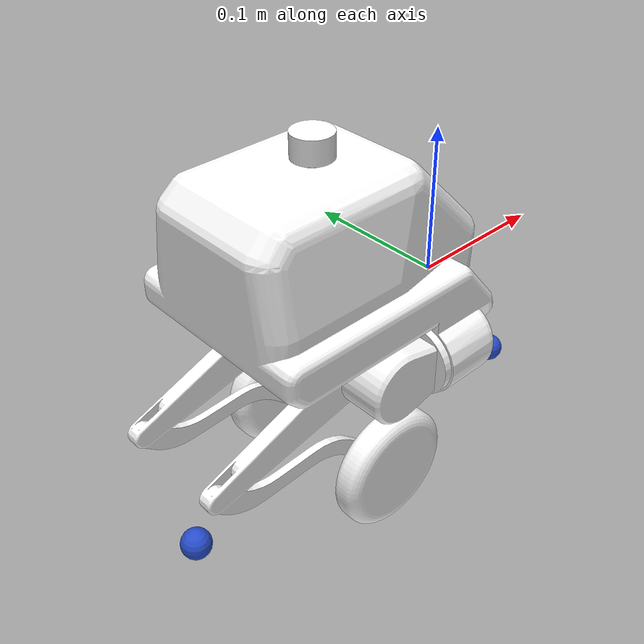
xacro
<?xml version="1.0" encoding="utf-8"?>
<robot name="robot" xmlns:xacro="http://www.ros.org/wiki/xacro">

  <xacro:include filename="./materials.xacro" />
  <xacro:include filename="./robot_diff.gazebo" />
  <link name="base_link">
    <collision name='caster_collision'>
      <origin xyz=" -0.20 0.0 -0.11" rpy="0.0 0.0 0.0" />
      <geometry>
        <sphere radius="0.01" />
      </geometry>
      <surface>
        <friction>
          <ode>
            <mu>0</mu>
            <mu2>0</mu2>
            <slip1>1.0</slip1>
            <slip2>1.0</slip2>
          </ode>
        </friction>
      </surface>
    </collision>
    <visual name='caster_visual'>
      <origin xyz="-0.20 0.0 -0.11" rpy="0.0 0.0 0.0" />
      <geometry>
        <sphere radius="0.01" />
      </geometry>
      <material name="blue" />
    </visual>

    <collision name='caster_collision2'>
      <origin xyz="0.08 0.0 -0.11" rpy="0.0 0.0 0.0" />
      <geometry>
        <sphere radius="0.01" />
      </geometry>
      <surface>
        <friction>
          <ode>
            <mu>0</mu>
            <mu2>0</mu2>
            <slip1>1.0</slip1>
            <slip2>1.0</slip2>
          </ode>
        </friction>
      </surface>
    </collision>
    <visual name='caster_visual2'>
      <origin xyz="0.08 0.0 -0.11" rpy="0.0 0.0 0.0" />
      <geometry>
        <sphere radius="0.01" />
      </geometry>
      <material name="blue" />
    </visual>

    <inertial>
      <origin
        xyz="-0.0874516163459738 5.31422875144915E-09 0.0387204580713744"
        rpy="0 0 0" />
      <mass
        value="2.88193088332526" />
      <inertia
        ixx="0.0061331281193836"
        ixy="7.93377680961833E-09"
        ixz="0.00193483075640293"
        iyy="0.00924143994663832"
        iyz="-2.8840787066109E-09"
        izz="0.00886382713610894" />
    </inertial>
    <visual>
      <origin
        xyz="0 0 0"
        rpy="0 0 0" />
      <geometry>
        <mesh
          filename="package://project_470122/meshes/base_link.STL" />
      </geometry>
      <material
        name="">
        <color
          rgba="1 1 1 1" />
      </material>
    </visual>
    <collision>
      <origin
        xyz="0 0 0"
        rpy="0 0 0" />
      <geometry>
        <mesh
          filename="package://project_470122/meshes/base_link.STL" />
      </geometry>
    </collision>
  </link>
  <link
    name="lidar_link">
    <inertial>
      <origin
        xyz="-1.7371E-35 -1.8775E-19 0.0075"
        rpy="0 0 0" />
      <mass
        value="0.0096457" />
      <inertia
        ixx="5.5764E-07"
        ixy="1.7632E-38"
        ixz="-1.4344E-40"
        iyy="5.5764E-07"
        iyz="1.7338E-23"
        izz="7.5357E-07" />
    </inertial>
    <visual>
      <origin
        xyz="0 0 0"
        rpy="0 0 0" />
      <geometry>
        <mesh
          filename="package://project_470122/meshes/lidar_link.STL" />
      </geometry>
      <material
        name="">
        <color
          rgba="1 1 1 1" />
      </material>
    </visual>
    <collision>
      <origin
        xyz="0 0 0"
        rpy="0 0 0" />
      <geometry>
        <mesh
          filename="package://project_470122/meshes/lidar_link.STL" />
      </geometry>
    </collision>
  </link>
  <joint
    name="lidar_joint"
    type="fixed">
    <origin
      xyz="-0.1 0 0.11491"
      rpy="0 0 0" />
    <parent
      link="base_link" />
    <child
      link="lidar_link" />
    <axis
      xyz="0 0 0" />
  </joint>
  <link
    name="left_wheel_link">
    <inertial>
      <origin
        xyz="0 -5.1918E-05 0"
        rpy="0 0 0" />
      <mass
        value="0.12386" />
      <inertia
        ixx="5.0485E-05"
        ixy="-3.496E-22"
        ixz="1.9331E-23"
        iyy="9.3248E-05"
        iyz="1.1154E-21"
        izz="5.0485E-05" />
    </inertial>
    <visual>
      <origin
        xyz="0 0 0"
        rpy="0 0 0" />
      <geometry>
        <mesh
          filename="package://project_470122/meshes/left_wheel_link.STL" />
      </geometry>
      <material
        name="">
        <color
          rgba="1 1 1 1" />
      </material>
    </visual>
    <collision>
      <origin
        xyz="0 0 0"
        rpy="0 0 0" />
      <geometry>
        <mesh
          filename="package://project_470122/meshes/left_wheel_link.STL" />
      </geometry>
    </collision>
  </link>
  <joint
    name="left_wheel_joint"
    type="continuous">
    <origin
      xyz="-0.087618 0.052 -0.082542"
      rpy="0 1.5708 0" />
    <parent
      link="base_link" />
    <child
      link="left_wheel_link" />
    <axis
      xyz="0 1 0" />
    <limit
      effort="100"
      velocity="10" />
  </joint>
  <link
    name="right_wheel_link">
    <inertial>
      <origin
        xyz="0 5.1918E-05 0"
        rpy="0 0 0" />
      <mass
        value="0.12386" />
      <inertia
        ixx="5.0485E-05"
        ixy="-2.6006E-21"
        ixz="1.1638E-21"
        iyy="9.3248E-05"
        iyz="-4.3711E-21"
        izz="5.0485E-05" />
    </inertial>
    <visual>
      <origin
        xyz="0 0 0"
        rpy="0 0 0" />
      <geometry>
        <mesh
          filename="package://project_470122/meshes/right_wheel_link.STL" />
      </geometry>
      <material
        name="">
        <color
          rgba="1 1 1 1" />
      </material>
    </visual>
    <collision>
      <origin
        xyz="0 0 0"
        rpy="0 0 0" />
      <geometry>
        <mesh
          filename="package://project_470122/meshes/right_wheel_link.STL" />
      </geometry>
    </collision>
  </link>
  <joint
    name="right_wheel_joint"
    type="continuous">
    <origin
      xyz="-0.087618 -0.052 -0.082542"
      rpy="0 1.5708 0" />
    <parent
      link="base_link" />
    <child
      link="right_wheel_link" />
    <axis
      xyz="0 1 0" />
    <limit
      effort="100"
      velocity="10" />
  </joint>
</robot>
